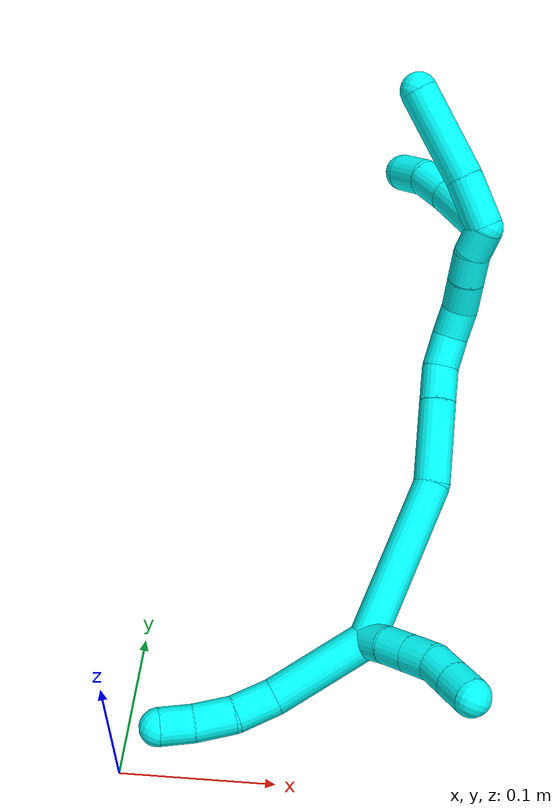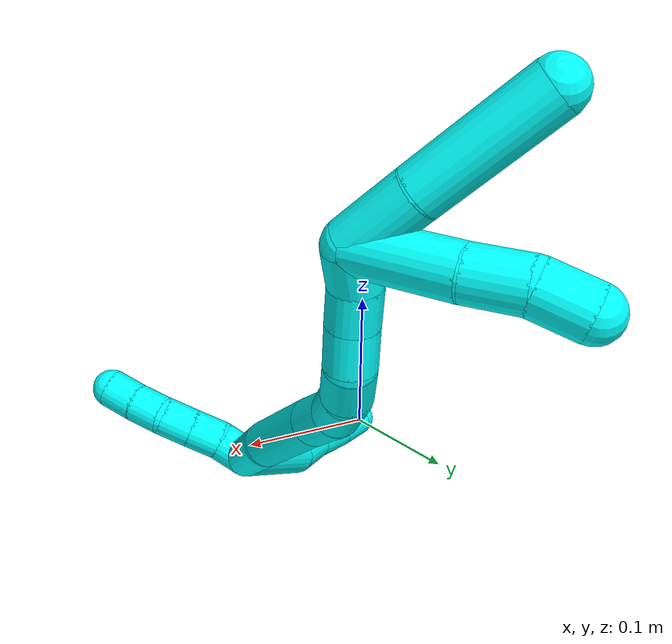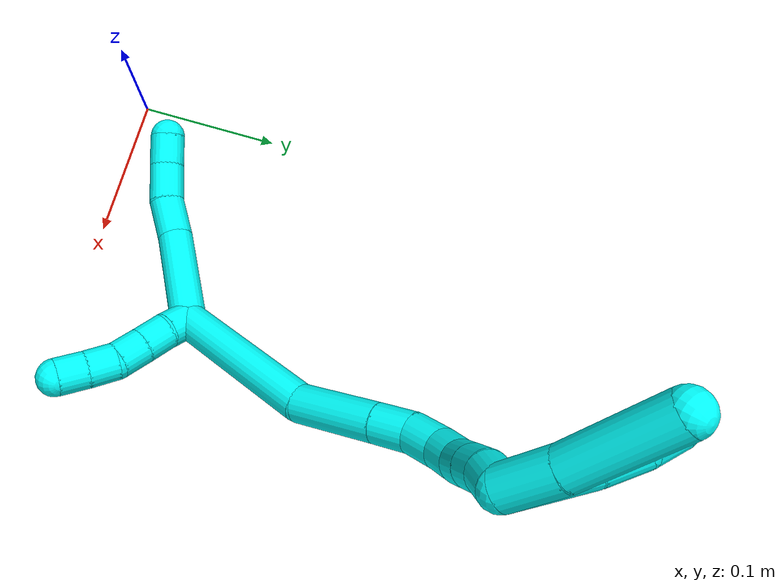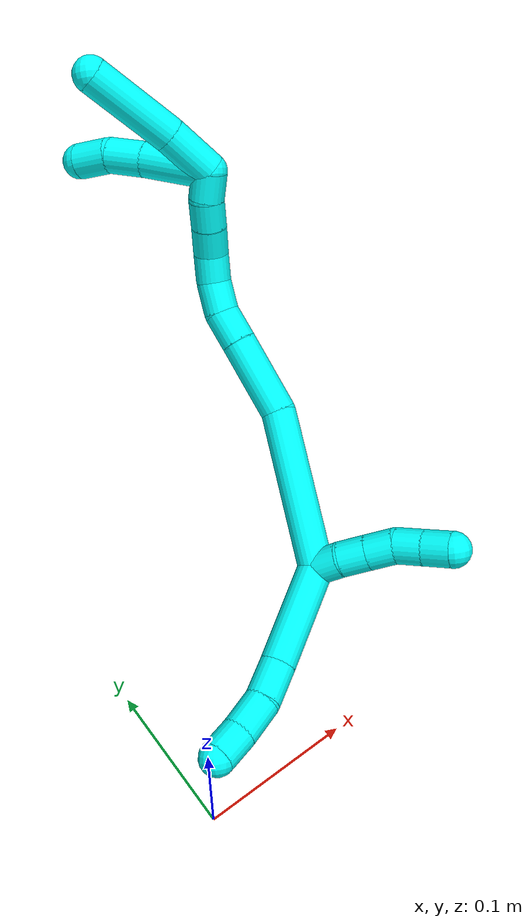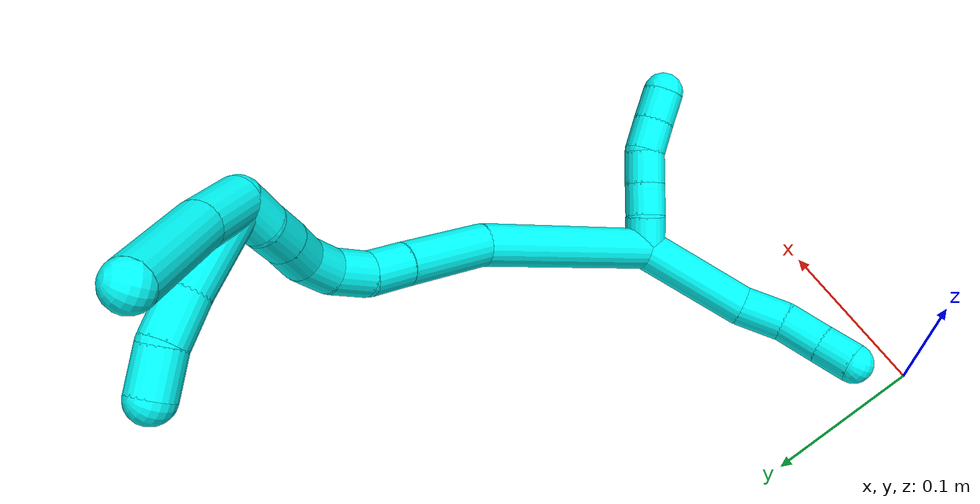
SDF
<sdf version="1.7">
 <world name="default">
  <model name="3">
   <static>0</static>
   <link name="3">
    <collision name="collision-cylinder-e_1_2_8">
     <pose>-0.015428 -0.014055 -0.028973 2.68993 -0.44678 -1.55955</pose>
     <geometry><cylinder><radius>0.0125</radius><length>0.071414</length></cylinder></geometry>
     <surface>
      <friction><ode><mu>1.16</mu><mu2>1.16</mu2><slip1>0</slip1><slip2>0</slip2></ode></friction>
      <contact><ode><kp>1e+06</kp><kd>1</kd><max_vel>0</max_vel><min_depth>0.001</min_depth></ode></contact>
     </surface>
    </collision>
    <visual name="visual-cylinder-e_1_2_8">
     <pose>-0.015428 -0.014055 -0.028973 2.68993 -0.44678 -1.55955</pose>
     <geometry><cylinder><radius>0.0125</radius><length>0.071414</length></cylinder></geometry>
     <material><ambient>0.003922 1 0.996078 1</ambient></material>
    </visual>
    <collision name="collision-cylinder-e_2_8_9">
     <pose>-0.036203 -0.037824 -0.067129 2.32811 -0.380553 -0.840925</pose>
     <geometry><cylinder><radius>0.0125</radius><length>0.028794</length></cylinder></geometry>
     <surface>
      <friction><ode><mu>1.16</mu><mu2>1.16</mu2><slip1>0</slip1><slip2>0</slip2></ode></friction>
      <contact><ode><kp>1e+06</kp><kd>1</kd><max_vel>0</max_vel><min_depth>0.001</min_depth></ode></contact>
     </surface>
    </collision>
    <visual name="visual-cylinder-e_2_8_9">
     <pose>-0.036203 -0.037824 -0.067129 2.32811 -0.380553 -0.840925</pose>
     <geometry><cylinder><radius>0.0125</radius><length>0.028794</length></cylinder></geometry>
     <material><ambient>0.003922 1 0.996078 1</ambient></material>
    </visual>
    <collision name="collision-cylinder-e_3_9_10">
     <pose>-0.049158 -0.056202 -0.083351 2.25312 -0.598174 -1.14966</pose>
     <geometry><cylinder><radius>0.0125</radius><length>0.027019</length></cylinder></geometry>
     <surface>
      <friction><ode><mu>1.16</mu><mu2>1.16</mu2><slip1>0</slip1><slip2>0</slip2></ode></friction>
      <contact><ode><kp>1e+06</kp><kd>1</kd><max_vel>0</max_vel><min_depth>0.001</min_depth></ode></contact>
     </surface>
    </collision>
    <visual name="visual-cylinder-e_3_9_10">
     <pose>-0.049158 -0.056202 -0.083351 2.25312 -0.598174 -1.14966</pose>
     <geometry><cylinder><radius>0.0125</radius><length>0.027019</length></cylinder></geometry>
     <material><ambient>0.003922 1 0.996078 1</ambient></material>
    </visual>
    <collision name="collision-cylinder-e_4_10_6">
     <pose>-0.063317 -0.072963 -0.094994 2.08769 -0.613025 -0.996371</pose>
     <geometry><cylinder><radius>0.0125</radius><length>0.022773</length></cylinder></geometry>
     <surface>
      <friction><ode><mu>1.16</mu><mu2>1.16</mu2><slip1>0</slip1><slip2>0</slip2></ode></friction>
      <contact><ode><kp>1e+06</kp><kd>1</kd><max_vel>0</max_vel><min_depth>0.001</min_depth></ode></contact>
     </surface>
    </collision>
    <visual name="visual-cylinder-e_4_10_6">
     <pose>-0.063317 -0.072963 -0.094994 2.08769 -0.613025 -0.996371</pose>
     <geometry><cylinder><radius>0.0125</radius><length>0.022773</length></cylinder></geometry>
     <material><ambient>0.003922 1 0.996078 1</ambient></material>
    </visual>
    <collision name="collision-cylinder-e_1_2_11">
     <pose>0.009131 -0.003014 0.002747 0.831813 1.15073 0.557965</pose>
     <geometry><cylinder><radius>0.0125</radius><length>0.02</length></cylinder></geometry>
     <surface>
      <friction><ode><mu>1.16</mu><mu2>1.16</mu2><slip1>0</slip1><slip2>0</slip2></ode></friction>
      <contact><ode><kp>1e+06</kp><kd>1</kd><max_vel>0</max_vel><min_depth>0.001</min_depth></ode></contact>
     </surface>
    </collision>
    <visual name="visual-cylinder-e_1_2_11">
     <pose>0.009131 -0.003014 0.002747 0.831813 1.15073 0.557965</pose>
     <geometry><cylinder><radius>0.0125</radius><length>0.02</length></cylinder></geometry>
     <material><ambient>0.003922 1 0.996078 1</ambient></material>
    </visual>
    <collision name="collision-cylinder-e_2_11_12">
     <pose>0.027956 -0.0076 0.007378 0.695251 1.32293 0.549848</pose>
     <geometry><cylinder><radius>0.0125</radius><length>0.02</length></cylinder></geometry>
     <surface>
      <friction><ode><mu>1.16</mu><mu2>1.16</mu2><slip1>0</slip1><slip2>0</slip2></ode></friction>
      <contact><ode><kp>1e+06</kp><kd>1</kd><max_vel>0</max_vel><min_depth>0.001</min_depth></ode></contact>
     </surface>
    </collision>
    <visual name="visual-cylinder-e_2_11_12">
     <pose>0.027956 -0.0076 0.007378 0.695251 1.32293 0.549848</pose>
     <geometry><cylinder><radius>0.0125</radius><length>0.02</length></cylinder></geometry>
     <material><ambient>0.003922 1 0.996078 1</ambient></material>
    </visual>
    <collision name="collision-cylinder-e_3_12_13">
     <pose>0.047313 -0.010931 0.011143 0.751801 1.31029 0.588861</pose>
     <geometry><cylinder><radius>0.0125</radius><length>0.02</length></cylinder></geometry>
     <surface>
      <friction><ode><mu>1.16</mu><mu2>1.16</mu2><slip1>0</slip1><slip2>0</slip2></ode></friction>
      <contact><ode><kp>1e+06</kp><kd>1</kd><max_vel>0</max_vel><min_depth>0.001</min_depth></ode></contact>
     </surface>
    </collision>
    <visual name="visual-cylinder-e_3_12_13">
     <pose>0.047313 -0.010931 0.011143 0.751801 1.31029 0.588861</pose>
     <geometry><cylinder><radius>0.0125</radius><length>0.02</length></cylinder></geometry>
     <material><ambient>0.003922 1 0.996078 1</ambient></material>
    </visual>
    <collision name="collision-cylinder-e_4_13_14">
     <pose>0.066452 -0.01575 0.012111 1.86085 1.24574 1.53408</pose>
     <geometry><cylinder><radius>0.0125</radius><length>0.02</length></cylinder></geometry>
     <surface>
      <friction><ode><mu>1.16</mu><mu2>1.16</mu2><slip1>0</slip1><slip2>0</slip2></ode></friction>
      <contact><ode><kp>1e+06</kp><kd>1</kd><max_vel>0</max_vel><min_depth>0.001</min_depth></ode></contact>
     </surface>
    </collision>
    <visual name="visual-cylinder-e_4_13_14">
     <pose>0.066452 -0.01575 0.012111 1.86085 1.24574 1.53408</pose>
     <geometry><cylinder><radius>0.0125</radius><length>0.02</length></cylinder></geometry>
     <material><ambient>0.003922 1 0.996078 1</ambient></material>
    </visual>
    <collision name="collision-cylinder-e_5_14_5">
     <pose>0.085235 -0.022389 0.01044 1.77935 1.19629 1.39816</pose>
     <geometry><cylinder><radius>0.0125</radius><length>0.02</length></cylinder></geometry>
     <surface>
      <friction><ode><mu>1.16</mu><mu2>1.16</mu2><slip1>0</slip1><slip2>0</slip2></ode></friction>
      <contact><ode><kp>1e+06</kp><kd>1</kd><max_vel>0</max_vel><min_depth>0.001</min_depth></ode></contact>
     </surface>
    </collision>
    <visual name="visual-cylinder-e_5_14_5">
     <pose>0.085235 -0.022389 0.01044 1.77935 1.19629 1.39816</pose>
     <geometry><cylinder><radius>0.0125</radius><length>0.02</length></cylinder></geometry>
     <material><ambient>0.003922 1 0.996078 1</ambient></material>
    </visual>
    <collision name="collision-cylinder-e_1_2_15">
     <pose>-0.008357 0.013703 0.054288 -0.247241 -0.148156 0.018442</pose>
     <geometry><cylinder><radius>0.0125</radius><length>0.113222</length></cylinder></geometry>
     <surface>
      <friction><ode><mu>1.16</mu><mu2>1.16</mu2><slip1>0</slip1><slip2>0</slip2></ode></friction>
      <contact><ode><kp>1e+06</kp><kd>1</kd><max_vel>0</max_vel><min_depth>0.001</min_depth></ode></contact>
     </surface>
    </collision>
    <visual name="visual-cylinder-e_1_2_15">
     <pose>-0.008357 0.013703 0.054288 -0.247241 -0.148156 0.018442</pose>
     <geometry><cylinder><radius>0.0125</radius><length>0.113222</length></cylinder></geometry>
     <material><ambient>0.003922 1 0.996078 1</ambient></material>
    </visual>
    <collision name="collision-cylinder-e_2_15_16">
     <pose>-0.028207 0.028841 0.134762 -0.054764 -0.41305 0.011476</pose>
     <geometry><cylinder><radius>0.0125</radius><length>0.057265</length></cylinder></geometry>
     <surface>
      <friction><ode><mu>1.16</mu><mu2>1.16</mu2><slip1>0</slip1><slip2>0</slip2></ode></friction>
      <contact><ode><kp>1e+06</kp><kd>1</kd><max_vel>0</max_vel><min_depth>0.001</min_depth></ode></contact>
     </surface>
    </collision>
    <visual name="visual-cylinder-e_2_15_16">
     <pose>-0.028207 0.028841 0.134762 -0.054764 -0.41305 0.011476</pose>
     <geometry><cylinder><radius>0.0125</radius><length>0.057265</length></cylinder></geometry>
     <material><ambient>0.003922 1 0.996078 1</ambient></material>
    </visual>
    <collision name="collision-cylinder-e_3_16_17">
     <pose>-0.044698 0.031344 0.171904 -0.097179 -0.426197 0.021044</pose>
     <geometry><cylinder><radius>0.0125</radius><length>0.024179</length></cylinder></geometry>
     <surface>
      <friction><ode><mu>1.16</mu><mu2>1.16</mu2><slip1>0</slip1><slip2>0</slip2></ode></friction>
      <contact><ode><kp>1e+06</kp><kd>1</kd><max_vel>0</max_vel><min_depth>0.001</min_depth></ode></contact>
     </surface>
    </collision>
    <visual name="visual-cylinder-e_3_16_17">
     <pose>-0.044698 0.031344 0.171904 -0.097179 -0.426197 0.021044</pose>
     <geometry><cylinder><radius>0.0125</radius><length>0.024179</length></cylinder></geometry>
     <material><ambient>0.003922 1 0.996078 1</ambient></material>
    </visual>
    <collision name="collision-cylinder-e_4_17_18">
     <pose>-0.05125 0.032512 0.194281 -0.008702 -0.135297 0.00059</pose>
     <geometry><cylinder><radius>0.0125</radius><length>0.023055</length></cylinder></geometry>
     <surface>
      <friction><ode><mu>1.16</mu><mu2>1.16</mu2><slip1>0</slip1><slip2>0</slip2></ode></friction>
      <contact><ode><kp>1e+06</kp><kd>1</kd><max_vel>0</max_vel><min_depth>0.001</min_depth></ode></contact>
     </surface>
    </collision>
    <visual name="visual-cylinder-e_4_17_18">
     <pose>-0.05125 0.032512 0.194281 -0.008702 -0.135297 0.00059</pose>
     <geometry><cylinder><radius>0.0125</radius><length>0.023055</length></cylinder></geometry>
     <material><ambient>0.003922 1 0.996078 1</ambient></material>
    </visual>
    <collision name="collision-cylinder-e_5_18_19">
     <pose>-0.052189 0.029996 0.215793 0.253591 0.059035 0.007528</pose>
     <geometry><cylinder><radius>0.0125</radius><length>0.020884</length></cylinder></geometry>
     <surface>
      <friction><ode><mu>1.16</mu><mu2>1.16</mu2><slip1>0</slip1><slip2>0</slip2></ode></friction>
      <contact><ode><kp>1e+06</kp><kd>1</kd><max_vel>0</max_vel><min_depth>0.001</min_depth></ode></contact>
     </surface>
    </collision>
    <visual name="visual-cylinder-e_5_18_19">
     <pose>-0.052189 0.029996 0.215793 0.253591 0.059035 0.007528</pose>
     <geometry><cylinder><radius>0.0125</radius><length>0.020884</length></cylinder></geometry>
     <material><ambient>0.003922 1 0.996078 1</ambient></material>
    </visual>
    <collision name="collision-cylinder-e_6_19_20">
     <pose>-0.05035 0.02168 0.234838 0.566908 0.114687 0.033442</pose>
     <geometry><cylinder><radius>0.0125</radius><length>0.02137</length></cylinder></geometry>
     <surface>
      <friction><ode><mu>1.16</mu><mu2>1.16</mu2><slip1>0</slip1><slip2>0</slip2></ode></friction>
      <contact><ode><kp>1e+06</kp><kd>1</kd><max_vel>0</max_vel><min_depth>0.001</min_depth></ode></contact>
     </surface>
    </collision>
    <visual name="visual-cylinder-e_6_19_20">
     <pose>-0.05035 0.02168 0.234838 0.566908 0.114687 0.033442</pose>
     <geometry><cylinder><radius>0.0125</radius><length>0.02137</length></cylinder></geometry>
     <material><ambient>0.003922 1 0.996078 1</ambient></material>
    </visual>
    <collision name="collision-cylinder-e_7_20_21">
     <pose>-0.048218 0.011049 0.252458 0.517372 0.091029 0.024103</pose>
     <geometry><cylinder><radius>0.0125</radius><length>0.020023</length></cylinder></geometry>
     <surface>
      <friction><ode><mu>1.16</mu><mu2>1.16</mu2><slip1>0</slip1><slip2>0</slip2></ode></friction>
      <contact><ode><kp>1e+06</kp><kd>1</kd><max_vel>0</max_vel><min_depth>0.001</min_depth></ode></contact>
     </surface>
    </collision>
    <visual name="visual-cylinder-e_7_20_21">
     <pose>-0.048218 0.011049 0.252458 0.517372 0.091029 0.024103</pose>
     <geometry><cylinder><radius>0.0125</radius><length>0.020023</length></cylinder></geometry>
     <material><ambient>0.003922 1 0.996078 1</ambient></material>
    </visual>
    <collision name="collision-cylinder-e_8_21_1">
     <pose>-0.044613 0.002565 0.270075 0.37776 0.272773 0.052457</pose>
     <geometry><cylinder><radius>0.0125</radius><length>0.020001</length></cylinder></geometry>
     <surface>
      <friction><ode><mu>1.16</mu><mu2>1.16</mu2><slip1>0</slip1><slip2>0</slip2></ode></friction>
      <contact><ode><kp>1e+06</kp><kd>1</kd><max_vel>0</max_vel><min_depth>0.001</min_depth></ode></contact>
     </surface>
    </collision>
    <visual name="visual-cylinder-e_8_21_1">
     <pose>-0.044613 0.002565 0.270075 0.37776 0.272773 0.052457</pose>
     <geometry><cylinder><radius>0.0125</radius><length>0.020001</length></cylinder></geometry>
     <material><ambient>0.003922 1 0.996078 1</ambient></material>
    </visual>
    <collision name="collision-cylinder-e_1_1_22">
     <pose>-0.052911 -0.007541 0.291533 0.482718 -0.661478 -0.168636</pose>
     <geometry><cylinder><radius>0.0125</radius><length>0.035787</length></cylinder></geometry>
     <surface>
      <friction><ode><mu>1.16</mu><mu2>1.16</mu2><slip1>0</slip1><slip2>0</slip2></ode></friction>
      <contact><ode><kp>1e+06</kp><kd>1</kd><max_vel>0</max_vel><min_depth>0.001</min_depth></ode></contact>
     </surface>
    </collision>
    <visual name="visual-cylinder-e_1_1_22">
     <pose>-0.052911 -0.007541 0.291533 0.482718 -0.661478 -0.168636</pose>
     <geometry><cylinder><radius>0.0125</radius><length>0.035787</length></cylinder></geometry>
     <material><ambient>0.003922 1 0.996078 1</ambient></material>
    </visual>
    <collision name="collision-cylinder-e_2_22_4">
     <pose>-0.084647 -0.028098 0.324149 0.608245 -0.702471 -0.229008</pose>
     <geometry><cylinder><radius>0.0125</radius><length>0.064213</length></cylinder></geometry>
     <surface>
      <friction><ode><mu>1.16</mu><mu2>1.16</mu2><slip1>0</slip1><slip2>0</slip2></ode></friction>
      <contact><ode><kp>1e+06</kp><kd>1</kd><max_vel>0</max_vel><min_depth>0.001</min_depth></ode></contact>
     </surface>
    </collision>
    <visual name="visual-cylinder-e_2_22_4">
     <pose>-0.084647 -0.028098 0.324149 0.608245 -0.702471 -0.229008</pose>
     <geometry><cylinder><radius>0.0125</radius><length>0.064213</length></cylinder></geometry>
     <material><ambient>0.003922 1 0.996078 1</ambient></material>
    </visual>
    <collision name="collision-cylinder-e_1_1_23">
     <pose>-0.064425 0.005172 0.286449 -0.692684 -1.16591 0.46725</pose>
     <geometry><cylinder><radius>0.0125</radius><length>0.048971</length></cylinder></geometry>
     <surface>
      <friction><ode><mu>1.16</mu><mu2>1.16</mu2><slip1>0</slip1><slip2>0</slip2></ode></friction>
      <contact><ode><kp>1e+06</kp><kd>1</kd><max_vel>0</max_vel><min_depth>0.001</min_depth></ode></contact>
     </surface>
    </collision>
    <visual name="visual-cylinder-e_1_1_23">
     <pose>-0.064425 0.005172 0.286449 -0.692684 -1.16591 0.46725</pose>
     <geometry><cylinder><radius>0.0125</radius><length>0.048971</length></cylinder></geometry>
     <material><ambient>0.003922 1 0.996078 1</ambient></material>
    </visual>
    <collision name="collision-cylinder-e_2_23_24">
     <pose>-0.099675 0.013504 0.297247 -0.571857 -1.26564 0.424738</pose>
     <geometry><cylinder><radius>0.0125</radius><length>0.026722</length></cylinder></geometry>
     <surface>
      <friction><ode><mu>1.16</mu><mu2>1.16</mu2><slip1>0</slip1><slip2>0</slip2></ode></friction>
      <contact><ode><kp>1e+06</kp><kd>1</kd><max_vel>0</max_vel><min_depth>0.001</min_depth></ode></contact>
     </surface>
    </collision>
    <visual name="visual-cylinder-e_2_23_24">
     <pose>-0.099675 0.013504 0.297247 -0.571857 -1.26564 0.424738</pose>
     <geometry><cylinder><radius>0.0125</radius><length>0.026722</length></cylinder></geometry>
     <material><ambient>0.003922 1 0.996078 1</ambient></material>
    </visual>
    <collision name="collision-cylinder-e_3_24_3">
     <pose>-0.124085 0.019076 0.300404 -1.63495 -1.28674 1.34888</pose>
     <geometry><cylinder><radius>0.0125</radius><length>0.024307</length></cylinder></geometry>
     <surface>
      <friction><ode><mu>1.16</mu><mu2>1.16</mu2><slip1>0</slip1><slip2>0</slip2></ode></friction>
      <contact><ode><kp>1e+06</kp><kd>1</kd><max_vel>0</max_vel><min_depth>0.001</min_depth></ode></contact>
     </surface>
    </collision>
    <visual name="visual-cylinder-e_3_24_3">
     <pose>-0.124085 0.019076 0.300404 -1.63495 -1.28674 1.34888</pose>
     <geometry><cylinder><radius>0.0125</radius><length>0.024307</length></cylinder></geometry>
     <material><ambient>0.003922 1 0.996078 1</ambient></material>
    </visual>
    <collision name="collision-sphere-3">
     <pose>-0.135751 0.022475 0.300186 0 -0 0</pose>
     <geometry><sphere><radius>0.0125</radius></sphere></geometry>
     <surface>
      <friction><ode><mu>1.16</mu><mu2>1.16</mu2><slip1>0</slip1><slip2>0</slip2></ode></friction>
      <contact><ode><kp>1e+06</kp><kd>1</kd><max_vel>0</max_vel><min_depth>0.001</min_depth></ode></contact>
     </surface>
    </collision>
    <visual name="visual-sphere-3">
     <pose>-0.135751 0.022475 0.300186 0 -0 0</pose>
     <geometry><sphere><radius>0.0125</radius></sphere></geometry>
     <material><ambient>0.003922 1 0.996078 1</ambient></material>
    </visual>
    <collision name="collision-sphere-24">
     <pose>-0.112418 0.015677 0.300622 0 -0 0</pose>
     <geometry><sphere><radius>0.0125</radius></sphere></geometry>
     <surface>
      <friction><ode><mu>1.16</mu><mu2>1.16</mu2><slip1>0</slip1><slip2>0</slip2></ode></friction>
      <contact><ode><kp>1e+06</kp><kd>1</kd><max_vel>0</max_vel><min_depth>0.001</min_depth></ode></contact>
     </surface>
    </collision>
    <visual name="visual-sphere-24">
     <pose>-0.112418 0.015677 0.300622 0 -0 0</pose>
     <geometry><sphere><radius>0.0125</radius></sphere></geometry>
     <material><ambient>0.003922 1 0.996078 1</ambient></material>
    </visual>
    <collision name="collision-sphere-23">
     <pose>-0.086931 0.011332 0.293871 0 -0 0</pose>
     <geometry><sphere><radius>0.0125</radius></sphere></geometry>
     <surface>
      <friction><ode><mu>1.16</mu><mu2>1.16</mu2><slip1>0</slip1><slip2>0</slip2></ode></friction>
      <contact><ode><kp>1e+06</kp><kd>1</kd><max_vel>0</max_vel><min_depth>0.001</min_depth></ode></contact>
     </surface>
    </collision>
    <visual name="visual-sphere-23">
     <pose>-0.086931 0.011332 0.293871 0 -0 0</pose>
     <geometry><sphere><radius>0.0125</radius></sphere></geometry>
     <material><ambient>0.003922 1 0.996078 1</ambient></material>
    </visual>
    <collision name="collision-sphere-4">
     <pose>-0.105391 -0.042101 0.344259 0 -0 0</pose>
     <geometry><sphere><radius>0.0125</radius></sphere></geometry>
     <surface>
      <friction><ode><mu>1.16</mu><mu2>1.16</mu2><slip1>0</slip1><slip2>0</slip2></ode></friction>
      <contact><ode><kp>1e+06</kp><kd>1</kd><max_vel>0</max_vel><min_depth>0.001</min_depth></ode></contact>
     </surface>
    </collision>
    <visual name="visual-sphere-4">
     <pose>-0.105391 -0.042101 0.344259 0 -0 0</pose>
     <geometry><sphere><radius>0.0125</radius></sphere></geometry>
     <material><ambient>0.003922 1 0.996078 1</ambient></material>
    </visual>
    <collision name="collision-sphere-22">
     <pose>-0.063902 -0.014095 0.304039 0 -0 0</pose>
     <geometry><sphere><radius>0.0125</radius></sphere></geometry>
     <surface>
      <friction><ode><mu>1.16</mu><mu2>1.16</mu2><slip1>0</slip1><slip2>0</slip2></ode></friction>
      <contact><ode><kp>1e+06</kp><kd>1</kd><max_vel>0</max_vel><min_depth>0.001</min_depth></ode></contact>
     </surface>
    </collision>
    <visual name="visual-sphere-22">
     <pose>-0.063902 -0.014095 0.304039 0 -0 0</pose>
     <geometry><sphere><radius>0.0125</radius></sphere></geometry>
     <material><ambient>0.003922 1 0.996078 1</ambient></material>
    </visual>
    <collision name="collision-sphere-1">
     <pose>-0.041919 -0.000987 0.279027 0 -0 0</pose>
     <geometry><sphere><radius>0.0125</radius></sphere></geometry>
     <surface>
      <friction><ode><mu>1.16</mu><mu2>1.16</mu2><slip1>0</slip1><slip2>0</slip2></ode></friction>
      <contact><ode><kp>1e+06</kp><kd>1</kd><max_vel>0</max_vel><min_depth>0.001</min_depth></ode></contact>
     </surface>
    </collision>
    <visual name="visual-sphere-1">
     <pose>-0.041919 -0.000987 0.279027 0 -0 0</pose>
     <geometry><sphere><radius>0.0125</radius></sphere></geometry>
     <material><ambient>0.003922 1 0.996078 1</ambient></material>
    </visual>
    <collision name="collision-sphere-21">
     <pose>-0.047307 0.006117 0.261123 0 -0 0</pose>
     <geometry><sphere><radius>0.0125</radius></sphere></geometry>
     <surface>
      <friction><ode><mu>1.16</mu><mu2>1.16</mu2><slip1>0</slip1><slip2>0</slip2></ode></friction>
      <contact><ode><kp>1e+06</kp><kd>1</kd><max_vel>0</max_vel><min_depth>0.001</min_depth></ode></contact>
     </surface>
    </collision>
    <visual name="visual-sphere-21">
     <pose>-0.047307 0.006117 0.261123 0 -0 0</pose>
     <geometry><sphere><radius>0.0125</radius></sphere></geometry>
     <material><ambient>0.003922 1 0.996078 1</ambient></material>
    </visual>
    <collision name="collision-sphere-11">
     <pose>0.018261 -0.006029 0.005494 0 -0 0</pose>
     <geometry><sphere><radius>0.0125</radius></sphere></geometry>
     <surface>
      <friction><ode><mu>1.16</mu><mu2>1.16</mu2><slip1>0</slip1><slip2>0</slip2></ode></friction>
      <contact><ode><kp>1e+06</kp><kd>1</kd><max_vel>0</max_vel><min_depth>0.001</min_depth></ode></contact>
     </surface>
    </collision>
    <visual name="visual-sphere-11">
     <pose>0.018261 -0.006029 0.005494 0 -0 0</pose>
     <geometry><sphere><radius>0.0125</radius></sphere></geometry>
     <material><ambient>0.003922 1 0.996078 1</ambient></material>
    </visual>
    <collision name="collision-sphere-6">
     <pose>-0.069868 -0.081059 -0.099596 0 -0 0</pose>
     <geometry><sphere><radius>0.0125</radius></sphere></geometry>
     <surface>
      <friction><ode><mu>1.16</mu><mu2>1.16</mu2><slip1>0</slip1><slip2>0</slip2></ode></friction>
      <contact><ode><kp>1e+06</kp><kd>1</kd><max_vel>0</max_vel><min_depth>0.001</min_depth></ode></contact>
     </surface>
    </collision>
    <visual name="visual-sphere-6">
     <pose>-0.069868 -0.081059 -0.099596 0 -0 0</pose>
     <geometry><sphere><radius>0.0125</radius></sphere></geometry>
     <material><ambient>0.003922 1 0.996078 1</ambient></material>
    </visual>
    <collision name="collision-sphere-10">
     <pose>-0.056766 -0.064866 -0.090391 0 -0 0</pose>
     <geometry><sphere><radius>0.0125</radius></sphere></geometry>
     <surface>
      <friction><ode><mu>1.16</mu><mu2>1.16</mu2><slip1>0</slip1><slip2>0</slip2></ode></friction>
      <contact><ode><kp>1e+06</kp><kd>1</kd><max_vel>0</max_vel><min_depth>0.001</min_depth></ode></contact>
     </surface>
    </collision>
    <visual name="visual-sphere-10">
     <pose>-0.056766 -0.064866 -0.090391 0 -0 0</pose>
     <geometry><sphere><radius>0.0125</radius></sphere></geometry>
     <material><ambient>0.003922 1 0.996078 1</ambient></material>
    </visual>
    <collision name="collision-sphere-9">
     <pose>-0.04155 -0.047537 -0.076311 0 -0 0</pose>
     <geometry><sphere><radius>0.0125</radius></sphere></geometry>
     <surface>
      <friction><ode><mu>1.16</mu><mu2>1.16</mu2><slip1>0</slip1><slip2>0</slip2></ode></friction>
      <contact><ode><kp>1e+06</kp><kd>1</kd><max_vel>0</max_vel><min_depth>0.001</min_depth></ode></contact>
     </surface>
    </collision>
    <visual name="visual-sphere-9">
     <pose>-0.04155 -0.047537 -0.076311 0 -0 0</pose>
     <geometry><sphere><radius>0.0125</radius></sphere></geometry>
     <material><ambient>0.003922 1 0.996078 1</ambient></material>
    </visual>
    <collision name="collision-sphere-2">
     <geometry><sphere><radius>0.0125</radius></sphere></geometry>
     <surface>
      <friction><ode><mu>1.16</mu><mu2>1.16</mu2><slip1>0</slip1><slip2>0</slip2></ode></friction>
      <contact><ode><kp>1e+06</kp><kd>1</kd><max_vel>0</max_vel><min_depth>0.001</min_depth></ode></contact>
     </surface>
    </collision>
    <visual name="visual-sphere-2">
     <geometry><sphere><radius>0.0125</radius></sphere></geometry>
     <material><ambient>0.003922 1 0.996078 1</ambient></material>
    </visual>
    <collision name="collision-sphere-19">
     <pose>-0.051573 0.027381 0.225884 0 -0 0</pose>
     <geometry><sphere><radius>0.0125</radius></sphere></geometry>
     <surface>
      <friction><ode><mu>1.16</mu><mu2>1.16</mu2><slip1>0</slip1><slip2>0</slip2></ode></friction>
      <contact><ode><kp>1e+06</kp><kd>1</kd><max_vel>0</max_vel><min_depth>0.001</min_depth></ode></contact>
     </surface>
    </collision>
    <visual name="visual-sphere-19">
     <pose>-0.051573 0.027381 0.225884 0 -0 0</pose>
     <geometry><sphere><radius>0.0125</radius></sphere></geometry>
     <material><ambient>0.003922 1 0.996078 1</ambient></material>
    </visual>
    <collision name="collision-sphere-8">
     <pose>-0.030855 -0.02811 -0.057946 0 -0 0</pose>
     <geometry><sphere><radius>0.0125</radius></sphere></geometry>
     <surface>
      <friction><ode><mu>1.16</mu><mu2>1.16</mu2><slip1>0</slip1><slip2>0</slip2></ode></friction>
      <contact><ode><kp>1e+06</kp><kd>1</kd><max_vel>0</max_vel><min_depth>0.001</min_depth></ode></contact>
     </surface>
    </collision>
    <visual name="visual-sphere-8">
     <pose>-0.030855 -0.02811 -0.057946 0 -0 0</pose>
     <geometry><sphere><radius>0.0125</radius></sphere></geometry>
     <material><ambient>0.003922 1 0.996078 1</ambient></material>
    </visual>
    <collision name="collision-sphere-12">
     <pose>0.03765 -0.009172 0.009261 0 -0 0</pose>
     <geometry><sphere><radius>0.0125</radius></sphere></geometry>
     <surface>
      <friction><ode><mu>1.16</mu><mu2>1.16</mu2><slip1>0</slip1><slip2>0</slip2></ode></friction>
      <contact><ode><kp>1e+06</kp><kd>1</kd><max_vel>0</max_vel><min_depth>0.001</min_depth></ode></contact>
     </surface>
    </collision>
    <visual name="visual-sphere-12">
     <pose>0.03765 -0.009172 0.009261 0 -0 0</pose>
     <geometry><sphere><radius>0.0125</radius></sphere></geometry>
     <material><ambient>0.003922 1 0.996078 1</ambient></material>
    </visual>
    <collision name="collision-sphere-13">
     <pose>0.056975 -0.01269 0.013024 0 -0 0</pose>
     <geometry><sphere><radius>0.0125</radius></sphere></geometry>
     <surface>
      <friction><ode><mu>1.16</mu><mu2>1.16</mu2><slip1>0</slip1><slip2>0</slip2></ode></friction>
      <contact><ode><kp>1e+06</kp><kd>1</kd><max_vel>0</max_vel><min_depth>0.001</min_depth></ode></contact>
     </surface>
    </collision>
    <visual name="visual-sphere-13">
     <pose>0.056975 -0.01269 0.013024 0 -0 0</pose>
     <geometry><sphere><radius>0.0125</radius></sphere></geometry>
     <material><ambient>0.003922 1 0.996078 1</ambient></material>
    </visual>
    <collision name="collision-sphere-14">
     <pose>0.075928 -0.018811 0.011198 0 -0 0</pose>
     <geometry><sphere><radius>0.0125</radius></sphere></geometry>
     <surface>
      <friction><ode><mu>1.16</mu><mu2>1.16</mu2><slip1>0</slip1><slip2>0</slip2></ode></friction>
      <contact><ode><kp>1e+06</kp><kd>1</kd><max_vel>0</max_vel><min_depth>0.001</min_depth></ode></contact>
     </surface>
    </collision>
    <visual name="visual-sphere-14">
     <pose>0.075928 -0.018811 0.011198 0 -0 0</pose>
     <geometry><sphere><radius>0.0125</radius></sphere></geometry>
     <material><ambient>0.003922 1 0.996078 1</ambient></material>
    </visual>
    <collision name="collision-sphere-5">
     <pose>0.094542 -0.025968 0.009683 0 -0 0</pose>
     <geometry><sphere><radius>0.0125</radius></sphere></geometry>
     <surface>
      <friction><ode><mu>1.16</mu><mu2>1.16</mu2><slip1>0</slip1><slip2>0</slip2></ode></friction>
      <contact><ode><kp>1e+06</kp><kd>1</kd><max_vel>0</max_vel><min_depth>0.001</min_depth></ode></contact>
     </surface>
    </collision>
    <visual name="visual-sphere-5">
     <pose>0.094542 -0.025968 0.009683 0 -0 0</pose>
     <geometry><sphere><radius>0.0125</radius></sphere></geometry>
     <material><ambient>0.003922 1 0.996078 1</ambient></material>
    </visual>
    <collision name="collision-sphere-15">
     <pose>-0.016713 0.027405 0.108577 0 -0 0</pose>
     <geometry><sphere><radius>0.0125</radius></sphere></geometry>
     <surface>
      <friction><ode><mu>1.16</mu><mu2>1.16</mu2><slip1>0</slip1><slip2>0</slip2></ode></friction>
      <contact><ode><kp>1e+06</kp><kd>1</kd><max_vel>0</max_vel><min_depth>0.001</min_depth></ode></contact>
     </surface>
    </collision>
    <visual name="visual-sphere-15">
     <pose>-0.016713 0.027405 0.108577 0 -0 0</pose>
     <geometry><sphere><radius>0.0125</radius></sphere></geometry>
     <material><ambient>0.003922 1 0.996078 1</ambient></material>
    </visual>
    <collision name="collision-sphere-16">
     <pose>-0.0397 0.030276 0.160948 0 -0 0</pose>
     <geometry><sphere><radius>0.0125</radius></sphere></geometry>
     <surface>
      <friction><ode><mu>1.16</mu><mu2>1.16</mu2><slip1>0</slip1><slip2>0</slip2></ode></friction>
      <contact><ode><kp>1e+06</kp><kd>1</kd><max_vel>0</max_vel><min_depth>0.001</min_depth></ode></contact>
     </surface>
    </collision>
    <visual name="visual-sphere-16">
     <pose>-0.0397 0.030276 0.160948 0 -0 0</pose>
     <geometry><sphere><radius>0.0125</radius></sphere></geometry>
     <material><ambient>0.003922 1 0.996078 1</ambient></material>
    </visual>
    <collision name="collision-sphere-17">
     <pose>-0.049696 0.032412 0.182859 0 -0 0</pose>
     <geometry><sphere><radius>0.0125</radius></sphere></geometry>
     <surface>
      <friction><ode><mu>1.16</mu><mu2>1.16</mu2><slip1>0</slip1><slip2>0</slip2></ode></friction>
      <contact><ode><kp>1e+06</kp><kd>1</kd><max_vel>0</max_vel><min_depth>0.001</min_depth></ode></contact>
     </surface>
    </collision>
    <visual name="visual-sphere-17">
     <pose>-0.049696 0.032412 0.182859 0 -0 0</pose>
     <geometry><sphere><radius>0.0125</radius></sphere></geometry>
     <material><ambient>0.003922 1 0.996078 1</ambient></material>
    </visual>
    <collision name="collision-sphere-18">
     <pose>-0.052805 0.032611 0.205703 0 -0 0</pose>
     <geometry><sphere><radius>0.0125</radius></sphere></geometry>
     <surface>
      <friction><ode><mu>1.16</mu><mu2>1.16</mu2><slip1>0</slip1><slip2>0</slip2></ode></friction>
      <contact><ode><kp>1e+06</kp><kd>1</kd><max_vel>0</max_vel><min_depth>0.001</min_depth></ode></contact>
     </surface>
    </collision>
    <visual name="visual-sphere-18">
     <pose>-0.052805 0.032611 0.205703 0 -0 0</pose>
     <geometry><sphere><radius>0.0125</radius></sphere></geometry>
     <material><ambient>0.003922 1 0.996078 1</ambient></material>
    </visual>
    <collision name="collision-sphere-20">
     <pose>-0.049128 0.01598 0.243792 0 -0 0</pose>
     <geometry><sphere><radius>0.0125</radius></sphere></geometry>
     <surface>
      <friction><ode><mu>1.16</mu><mu2>1.16</mu2><slip1>0</slip1><slip2>0</slip2></ode></friction>
      <contact><ode><kp>1e+06</kp><kd>1</kd><max_vel>0</max_vel><min_depth>0.001</min_depth></ode></contact>
     </surface>
    </collision>
    <visual name="visual-sphere-20">
     <pose>-0.049128 0.01598 0.243792 0 -0 0</pose>
     <geometry><sphere><radius>0.0125</radius></sphere></geometry>
     <material><ambient>0.003922 1 0.996078 1</ambient></material>
    </visual>
    <inertial>
     <pose>-0.033605 -0.001854 0.127281 0 -0 0</pose>
     <mass>0.75</mass>
     <inertia>
      <ixx>0.000136</ixx>
      <ixy>0</ixy>
      <ixz>0</ixz>
      <iyy>0.000161</iyy>
      <iyz>0</iyz>
      <izz>9.3e-05</izz>
     </inertia>
    </inertial>
   </link>
   <pose>0.152111 0.089155 0.035994 -0.809096 -0.158479 -0.636528</pose>
  </model>
 </world>
</sdf>
